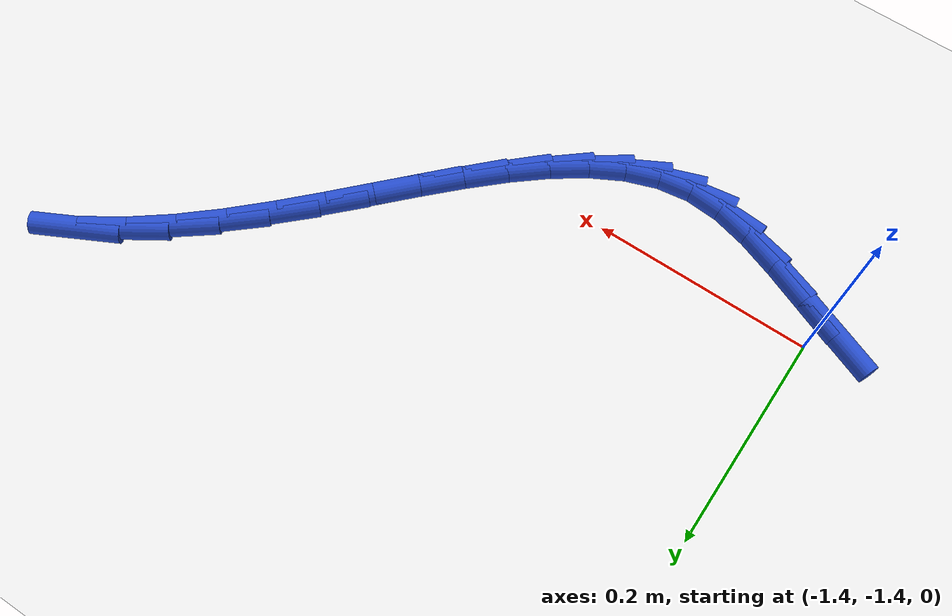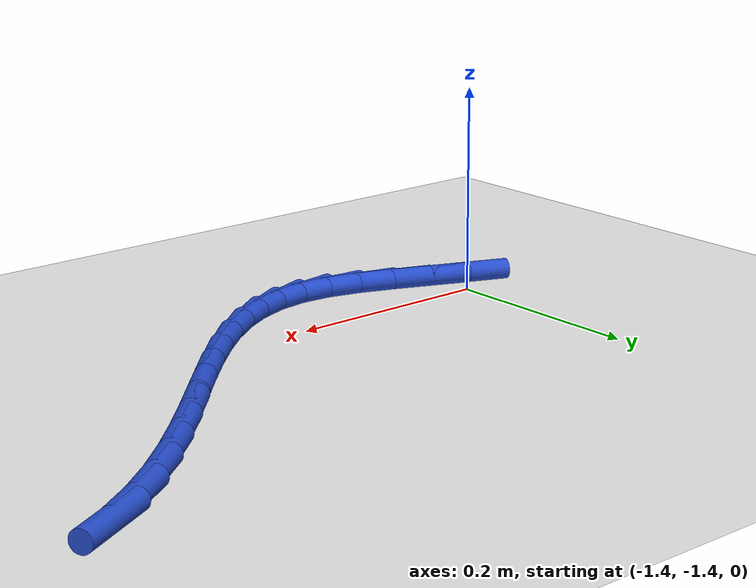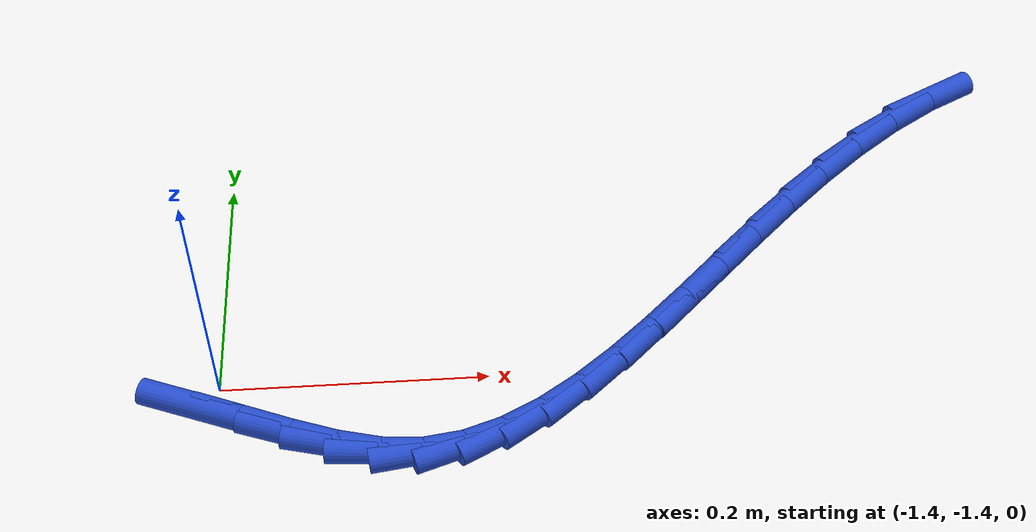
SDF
<sdf version="1.6">
 <world name="default">
  <model name="ground_plane">
   <static>1</static>
   <link name="link">
    <collision name="collision">
     <geometry><plane><normal>0 0 1</normal><size>100 100</size></plane></geometry>
     <surface><friction><ode><mu>100</mu><mu2>50</mu2></ode></friction></surface>
    </collision>
    <visual name="visual">
     <cast_shadows>0</cast_shadows>
     <geometry><plane><normal>0 0 1</normal><size>100 100</size></plane></geometry>
     <material>
      <script><uri>file://media/materials/scripts/gazebo.material</uri><name>Gazebo/WhiteGlow</name></script>
     </material>
    </visual>
   </link>
  </model>
  <model name="line">
   <link name="link_170">
    <pose>-1.419110183290845 -1.41892053744685 0.01 0 1.57 -0.38060773374739265</pose>
    <collision name="collision">
     <geometry><cylinder><radius>0.01</radius><length>0.08</length></cylinder></geometry>
    </collision>
    <visual name="visual">
     <material>
      <script><name>Gazebo/Blue</name><uri>file://media/materials/scripts/gazebo.material</uri></script>
     </material>
     <geometry><cylinder><radius>0.01</radius><length>0.08</length></cylinder></geometry>
    </visual>
   </link>
   <link name="link_171">
    <pose>-1.3813146096325661 -1.4340432108556576 0.01 0 1.57 -0.3903497682264594</pose>
    <collision name="collision">
     <geometry><cylinder><radius>0.01</radius><length>0.08</length></cylinder></geometry>
    </collision>
    <visual name="visual">
     <material>
      <script><name>Gazebo/Blue</name><uri>file://media/materials/scripts/gazebo.material</uri></script>
     </material>
     <geometry><cylinder><radius>0.01</radius><length>0.08</length></cylinder></geometry>
    </visual>
   </link>
   <link name="link_172">
    <pose>-1.345801589162587 -1.4486555346700156 0.01 0 1.57 -0.3506628784523784</pose>
    <collision name="collision">
     <geometry><cylinder><radius>0.01</radius><length>0.08</length></cylinder></geometry>
    </collision>
    <visual name="visual">
     <material>
      <script><name>Gazebo/Blue</name><uri>file://media/materials/scripts/gazebo.material</uri></script>
     </material>
     <geometry><cylinder><radius>0.01</radius><length>0.08</length></cylinder></geometry>
    </visual>
   </link>
   <link name="link_173">
    <pose>-1.3121883501389475 -1.4609505812393153 0.01 0 1.57 -0.2492782529921673</pose>
    <collision name="collision">
     <geometry><cylinder><radius>0.01</radius><length>0.08</length></cylinder></geometry>
    </collision>
    <visual name="visual">
     <material>
      <script><name>Gazebo/Blue</name><uri>file://media/materials/scripts/gazebo.material</uri></script>
     </material>
     <geometry><cylinder><radius>0.01</radius><length>0.08</length></cylinder></geometry>
    </visual>
   </link>
   <link name="link_174">
    <pose>-1.2800921208196887 -1.4691214229129477 0.01 0 1.57 -0.07290481594653452</pose>
    <collision name="collision">
     <geometry><cylinder><radius>0.01</radius><length>0.08</length></cylinder></geometry>
    </collision>
    <visual name="visual">
     <material>
      <script><name>Gazebo/Blue</name><uri>file://media/materials/scripts/gazebo.material</uri></script>
     </material>
     <geometry><cylinder><radius>0.01</radius><length>0.08</length></cylinder></geometry>
    </visual>
   </link>
   <link name="link_175">
    <pose>-1.2491318464632908 -1.4713825835442784 0.01 0 1.57 0.1457094393777618</pose>
    <collision name="collision">
     <geometry><cylinder><radius>0.01</radius><length>0.08</length></cylinder></geometry>
    </collision>
    <visual name="visual">
     <material>
      <script><name>Gazebo/Blue</name><uri>file://media/materials/scripts/gazebo.material</uri></script>
     </material>
     <geometry><cylinder><radius>0.01</radius><length>0.08</length></cylinder></geometry>
    </visual>
   </link>
   <link name="link_176">
    <pose>-1.2190075759673926 -1.4669618628111571 0.01 0 1.57 0.34055060603821613</pose>
    <collision name="collision">
     <geometry><cylinder><radius>0.01</radius><length>0.08</length></cylinder></geometry>
    </collision>
    <visual name="visual">
     <material>
      <script><name>Gazebo/Blue</name><uri>file://media/materials/scripts/gazebo.material</uri></script>
     </material>
     <geometry><cylinder><radius>0.01</radius><length>0.08</length></cylinder></geometry>
    </visual>
   </link>
   <link name="link_177">
    <pose>-1.189533865029858 -1.4565176617013202 0.01 0 1.57 0.4962343439061671</pose>
    <collision name="collision">
     <geometry><cylinder><radius>0.01</radius><length>0.08</length></cylinder></geometry>
    </collision>
    <visual name="visual">
     <material>
      <script><name>Gazebo/Blue</name><uri>file://media/materials/scripts/gazebo.material</uri></script>
     </material>
     <geometry><cylinder><radius>0.01</radius><length>0.08</length></cylinder></geometry>
    </visual>
   </link>
   <link name="link_178">
    <pose>-1.1605339171121103 -1.4408164228371516 0.01 0 1.57 0.6130544699491114</pose>
    <collision name="collision">
     <geometry><cylinder><radius>0.01</radius><length>0.08</length></cylinder></geometry>
    </collision>
    <visual name="visual">
     <material>
      <script><name>Gazebo/Blue</name><uri>file://media/materials/scripts/gazebo.material</uri></script>
     </material>
     <geometry><cylinder><radius>0.01</radius><length>0.08</length></cylinder></geometry>
    </visual>
   </link>
   <link name="link_179">
    <pose>-1.1318309356755722 -1.420624588841033 0.01 0 1.57 0.6967372702304857</pose>
    <collision name="collision">
     <geometry><cylinder><radius>0.01</radius><length>0.08</length></cylinder></geometry>
    </collision>
    <visual name="visual">
     <material>
      <script><name>Gazebo/Blue</name><uri>file://media/materials/scripts/gazebo.material</uri></script>
     </material>
     <geometry><cylinder><radius>0.01</radius><length>0.08</length></cylinder></geometry>
    </visual>
   </link>
   <link name="link_180">
    <pose>-1.1032481241816687 -1.3967086023353483 0.01 0 1.57 0.7536012455604162</pose>
    <collision name="collision">
     <geometry><cylinder><radius>0.01</radius><length>0.08</length></cylinder></geometry>
    </collision>
    <visual name="visual">
     <material>
      <script><name>Gazebo/Blue</name><uri>file://media/materials/scripts/gazebo.material</uri></script>
     </material>
     <geometry><cylinder><radius>0.01</radius><length>0.08</length></cylinder></geometry>
    </visual>
   </link>
   <link name="link_181">
    <pose>-1.0746086860918238 -1.3698349059424804 0.01 0 1.57 0.7887138165088956</pose>
    <collision name="collision">
     <geometry><cylinder><radius>0.01</radius><length>0.08</length></cylinder></geometry>
    </collision>
    <visual name="visual">
     <material>
      <script><name>Gazebo/Blue</name><uri>file://media/materials/scripts/gazebo.material</uri></script>
     </material>
     <geometry><cylinder><radius>0.01</radius><length>0.08</length></cylinder></geometry>
    </visual>
   </link>
   <link name="link_182">
    <pose>-1.0457358248674602 -1.3407699422848127 0.01 0 1.57 0.805583634198759</pose>
    <collision name="collision">
     <geometry><cylinder><radius>0.01</radius><length>0.08</length></cylinder></geometry>
    </collision>
    <visual name="visual">
     <material>
      <script><name>Gazebo/Blue</name><uri>file://media/materials/scripts/gazebo.material</uri></script>
     </material>
     <geometry><cylinder><radius>0.01</radius><length>0.08</length></cylinder></geometry>
    </visual>
   </link>
   <link name="link_183">
    <pose>-1.016452743970002 -1.310280153984728 0.01 0 1.57 0.8063408483792093</pose>
    <collision name="collision">
     <geometry><cylinder><radius>0.01</radius><length>0.08</length></cylinder></geometry>
    </collision>
    <visual name="visual">
     <material>
      <script><name>Gazebo/Blue</name><uri>file://media/materials/scripts/gazebo.material</uri></script>
     </material>
     <geometry><cylinder><radius>0.01</radius><length>0.08</length></cylinder></geometry>
    </visual>
   </link>
   <link name="link_184">
    <pose>-0.986582646860872 -1.2791319836646082 0.01 0 1.57 0.7919843075774002</pose>
    <collision name="collision">
     <geometry><cylinder><radius>0.01</radius><length>0.08</length></cylinder></geometry>
    </collision>
    <visual name="visual">
     <material>
      <script><name>Gazebo/Blue</name><uri>file://media/materials/scripts/gazebo.material</uri></script>
     </material>
     <geometry><cylinder><radius>0.01</radius><length>0.08</length></cylinder></geometry>
    </visual>
   </link>
   <link name="link_185">
    <pose>-0.9559487370014951 -1.2480918739468383 0.01 0 1.57 0.7625820749784574</pose>
    <collision name="collision">
     <geometry><cylinder><radius>0.01</radius><length>0.08</length></cylinder></geometry>
    </collision>
    <visual name="visual">
     <material>
      <script><name>Gazebo/Blue</name><uri>file://media/materials/scripts/gazebo.material</uri></script>
     </material>
     <geometry><cylinder><radius>0.01</radius><length>0.08</length></cylinder></geometry>
    </visual>
   </link>
   <link name="link_186">
    <pose>-0.9243742178532948 -1.2179262674538007 0.01 0 1.57 0.7174289198378527</pose>
    <collision name="collision">
     <geometry><cylinder><radius>0.01</radius><length>0.08</length></cylinder></geometry>
    </collision>
    <visual name="visual">
     <material>
      <script><name>Gazebo/Blue</name><uri>file://media/materials/scripts/gazebo.material</uri></script>
     </material>
     <geometry><cylinder><radius>0.01</radius><length>0.08</length></cylinder></geometry>
    </visual>
   </link>
   <link name="link_187">
    <pose>-0.8916822928776941 -1.1894016068078783 0.01 0 1.57 0.6552166237552782</pose>
    <collision name="collision">
     <geometry><cylinder><radius>0.01</radius><length>0.08</length></cylinder></geometry>
    </collision>
    <visual name="visual">
     <material>
      <script><name>Gazebo/Blue</name><uri>file://media/materials/scripts/gazebo.material</uri></script>
     </material>
     <geometry><cylinder><radius>0.01</radius><length>0.08</length></cylinder></geometry>
    </visual>
   </link>
   <link name="link_188">
    <pose>-0.8576961655361162 -1.1632843346314534 0.01 0 1.57 0.5743166523598711</pose>
    <collision name="collision">
     <geometry><cylinder><radius>0.01</radius><length>0.08</length></cylinder></geometry>
    </collision>
    <visual name="visual">
     <material>
      <script><name>Gazebo/Blue</name><uri>file://media/materials/scripts/gazebo.material</uri></script>
     </material>
     <geometry><cylinder><radius>0.01</radius><length>0.08</length></cylinder></geometry>
    </visual>
   </link>
   <link name="link_189">
    <pose>-0.8222390392899863 -1.1403408935469104 0.01 0 1.57 0.4739477199967406</pose>
    <collision name="collision">
     <geometry><cylinder><radius>0.01</radius><length>0.08</length></cylinder></geometry>
    </collision>
    <visual name="visual">
     <material>
      <script><name>Gazebo/Blue</name><uri>file://media/materials/scripts/gazebo.material</uri></script>
     </material>
     <geometry><cylinder><radius>0.01</radius><length>0.08</length></cylinder></geometry>
    </visual>
   </link>
  </model>
 </world>
</sdf>
